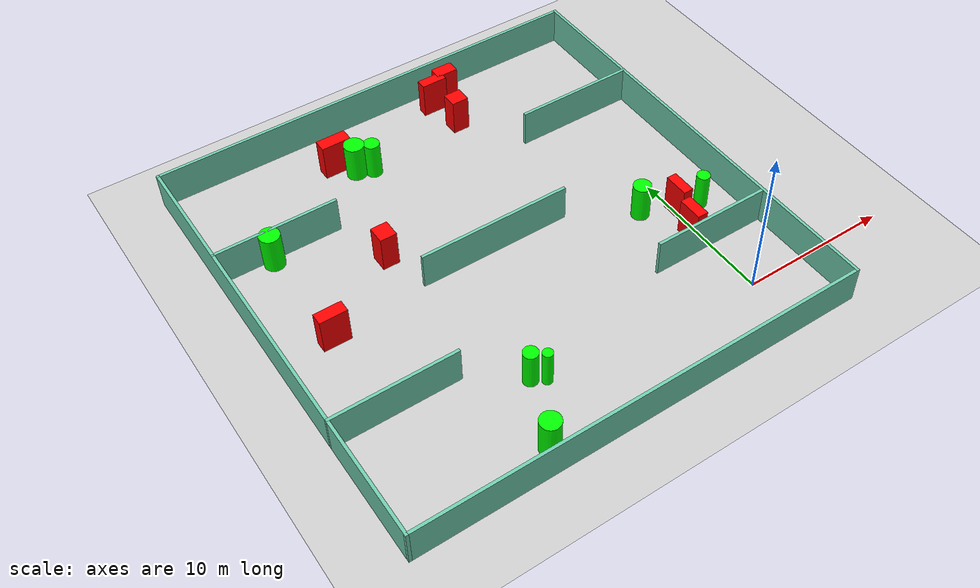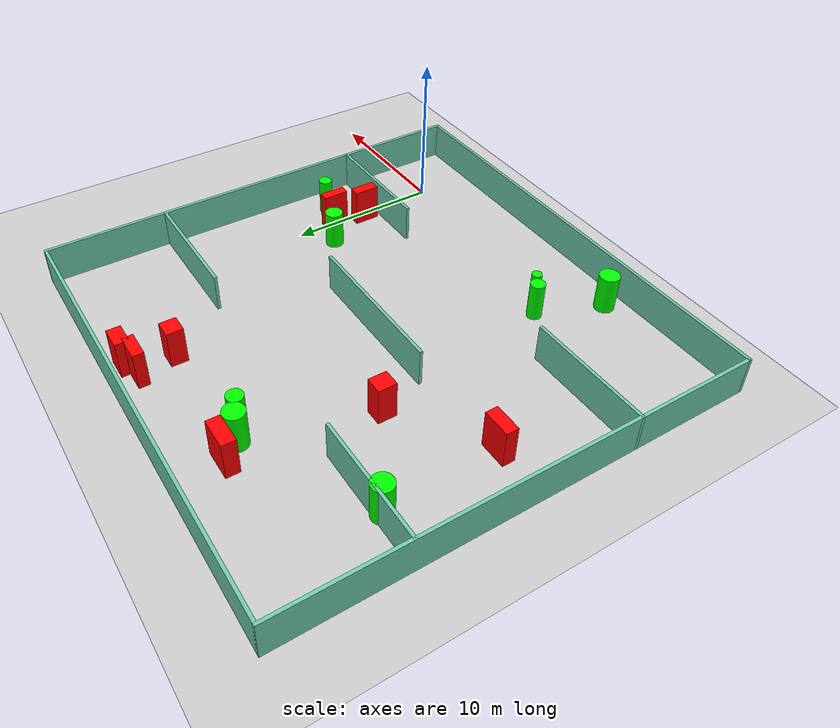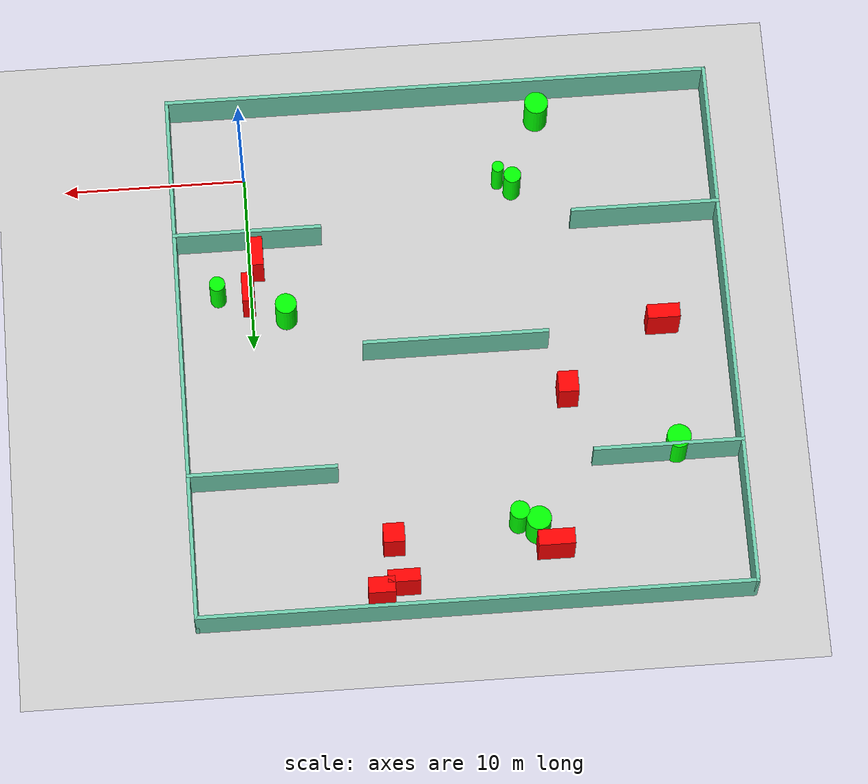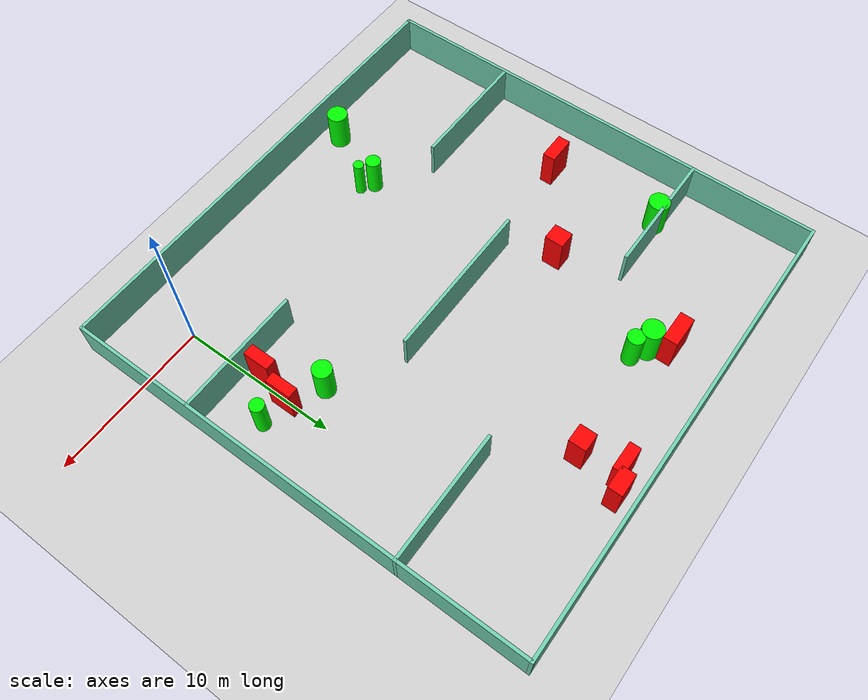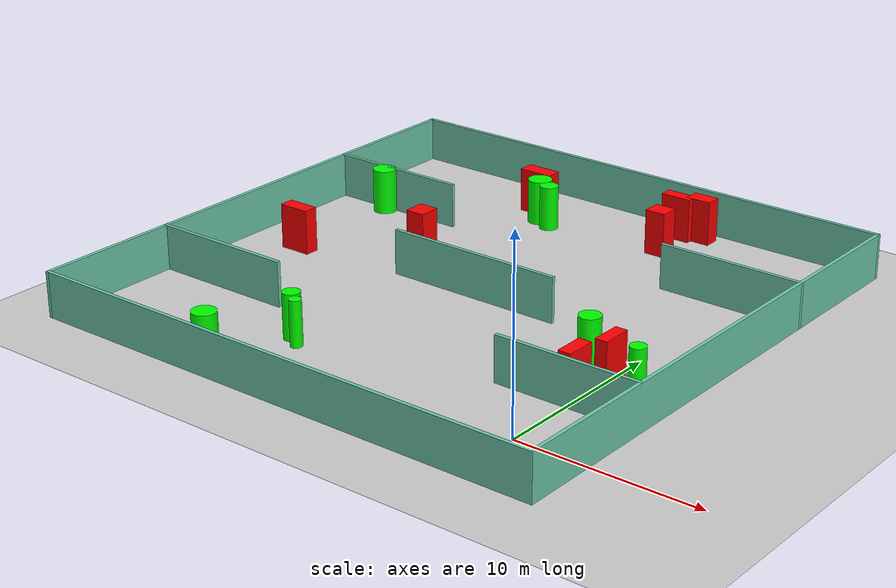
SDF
<sdf version="1.7">
 <world name="default">
  <light name="sun" type="directional">
   <pose>0 0 10 0 -0 0</pose>
   <diffuse>0.8 0.8 0.8 1</diffuse>
   <specular>0.2 0.2 0.2 1</specular>
   <attenuation>
    <range>1000</range>
    <constant>0.9</constant>
    <linear>0.01</linear>
    <quadratic>0.001</quadratic>
   </attenuation>
   <direction>-0.5 0.1 -0.9</direction>
   <spot><inner_angle>0</inner_angle><outer_angle>0</outer_angle><falloff>0</falloff></spot>
  </light>
  <model name="ground_plane">
   <static>1</static>
   <link name="link">
    <collision name="collision">
     <geometry><plane><normal>0 0 1</normal><size>100 100</size></plane></geometry>
     <surface>
      <contact><collide_bitmask>65535</collide_bitmask></contact>
      <friction><ode><mu>100</mu><mu2>50</mu2></ode></friction>
     </surface>
    </collision>
    <visual name="visual">
     <cast_shadows>0</cast_shadows>
     <geometry><plane><normal>0 0 1</normal><size>100 100</size></plane></geometry>
     <material>
      <script><uri>file://media/materials/scripts/gazebo.material</uri><name>Gazebo/Grey</name></script>
     </material>
    </visual>
   </link>
  </model>
  <gravity>0 0 -9.8</gravity>
  <magnetic_field>6e-06 2.3e-05 -4.2e-05</magnetic_field>
  <atmosphere type="adiabatic"/>
  <physics type="ode">
   <max_step_size>0.001</max_step_size>
   <real_time_factor>1</real_time_factor>
   <real_time_update_rate>1000</real_time_update_rate>
  </physics>
  <scene><ambient>0.4 0.4 0.4 1</ambient><background>0.7 0.7 0.7 1</background><shadows>1</shadows></scene>
  <spherical_coordinates>
   <surface_model>EARTH_WGS84</surface_model>
   <latitude_deg>0</latitude_deg>
   <longitude_deg>0</longitude_deg>
   <elevation>0</elevation>
   <heading_deg>0</heading_deg>
  </spherical_coordinates>
  <model name="my_base_walls">
   <link name="Wall_10">
    <collision name="Wall_10_Collision">
     <geometry><box><size>8.2 0.2 2.5</size></box></geometry>
     <pose>0 0 1.25 0 -0 0</pose>
    </collision>
    <visual name="Wall_10_Visual">
     <pose>0 0 1.25 0 -0 0</pose>
     <geometry><box><size>8.2 0.2 2.5</size></box></geometry>
     <material>
      <script><uri>file://media/materials/scripts/gazebo.material</uri><name>Gazebo/Grey</name></script>
      <ambient>0.435294 0.796078 0.67451 1</ambient>
     </material>
     <meta><layer>0</layer></meta>
    </visual>
    <pose>-11 -7 0 0 -0 0</pose>
   </link>
   <link name="Wall_12">
    <collision name="Wall_12_Collision">
     <geometry><box><size>8.2 0.2 2.5</size></box></geometry>
     <pose>0 0 1.25 0 -0 0</pose>
    </collision>
    <visual name="Wall_12_Visual">
     <pose>0 0 1.25 0 -0 0</pose>
     <geometry><box><size>8.2 0.2 2.5</size></box></geometry>
     <material>
      <script><uri>file://media/materials/scripts/gazebo.material</uri><name>Gazebo/Grey</name></script>
      <ambient>0.435294 0.796078 0.67451 1</ambient>
     </material>
     <meta><layer>0</layer></meta>
    </visual>
    <pose>-11 7 0 0 -0 0</pose>
   </link>
   <link name="Wall_14">
    <collision name="Wall_14_Collision">
     <geometry><box><size>8.2 0.2 2.5</size></box></geometry>
     <pose>0 0 1.25 0 -0 0</pose>
    </collision>
    <visual name="Wall_14_Visual">
     <pose>0 0 1.25 0 -0 0</pose>
     <geometry><box><size>8.2 0.2 2.5</size></box></geometry>
     <material>
      <script><uri>file://media/materials/scripts/gazebo.material</uri><name>Gazebo/Grey</name></script>
      <ambient>0.435294 0.796078 0.67451 1</ambient>
     </material>
     <meta><layer>0</layer></meta>
    </visual>
    <pose>11 7 0 0 -0 3.14159</pose>
   </link>
   <link name="Wall_16">
    <collision name="Wall_16_Collision">
     <geometry><box><size>10.2 0.2 2.5</size></box></geometry>
     <pose>0 0 1.25 0 -0 0</pose>
    </collision>
    <visual name="Wall_16_Visual">
     <pose>0 0 1.25 0 -0 0</pose>
     <geometry><box><size>10.2 0.2 2.5</size></box></geometry>
     <material>
      <script><uri>file://media/materials/scripts/gazebo.material</uri><name>Gazebo/Grey</name></script>
      <ambient>0.435294 0.796078 0.67451 1</ambient>
     </material>
     <meta><layer>0</layer></meta>
    </visual>
    <pose>0 0 0 0 -0 3.14159</pose>
   </link>
   <link name="Wall_2">
    <collision name="Wall_2_Collision">
     <geometry><box><size>30.2 0.2 2.5</size></box></geometry>
     <pose>0 0 1.25 0 -0 0</pose>
    </collision>
    <visual name="Wall_2_Visual">
     <pose>0 0 1.25 0 -0 0</pose>
     <geometry><box><size>30.2 0.2 2.5</size></box></geometry>
     <material>
      <script><uri>file://media/materials/scripts/gazebo.material</uri><name>Gazebo/Grey</name></script>
      <ambient>0.435294 0.796078 0.67451 1</ambient>
     </material>
     <meta><layer>0</layer></meta>
    </visual>
    <pose>0 -15 0 0 -0 3.14159</pose>
   </link>
   <link name="Wall_3">
    <collision name="Wall_3_Collision">
     <geometry><box><size>30.2 0.2 2.5</size></box></geometry>
     <pose>0 0 1.25 0 -0 0</pose>
    </collision>
    <visual name="Wall_3_Visual">
     <pose>0 0 1.25 0 -0 0</pose>
     <geometry><box><size>30.2 0.2 2.5</size></box></geometry>
     <material>
      <script><uri>file://media/materials/scripts/gazebo.material</uri><name>Gazebo/Grey</name></script>
      <ambient>0.435294 0.796078 0.67451 1</ambient>
     </material>
     <meta><layer>0</layer></meta>
    </visual>
    <pose>-15 0 0 0 -0 1.5708</pose>
   </link>
   <link name="Wall_4">
    <collision name="Wall_4_Collision">
     <geometry><box><size>30.2 0.2 2.5</size></box></geometry>
     <pose>0 0 1.25 0 -0 0</pose>
    </collision>
    <visual name="Wall_4_Visual">
     <pose>0 0 1.25 0 -0 0</pose>
     <geometry><box><size>30.2 0.2 2.5</size></box></geometry>
     <material>
      <script><uri>file://media/materials/scripts/gazebo.material</uri><name>Gazebo/Grey</name></script>
      <ambient>0.435294 0.796078 0.67451 1</ambient>
     </material>
     <meta><layer>0</layer></meta>
    </visual>
    <pose>0 15 0 0 -0 0</pose>
   </link>
   <link name="Wall_6">
    <collision name="Wall_6_Collision">
     <geometry><box><size>30.2 0.2 2.5</size></box></geometry>
     <pose>0 0 1.25 0 -0 0</pose>
    </collision>
    <visual name="Wall_6_Visual">
     <pose>0 0 1.25 0 -0 0</pose>
     <geometry><box><size>30.2 0.2 2.5</size></box></geometry>
     <material>
      <script><uri>file://media/materials/scripts/gazebo.material</uri><name>Gazebo/Grey</name></script>
      <ambient>0.435294 0.796078 0.67451 1</ambient>
     </material>
     <meta><layer>0</layer></meta>
    </visual>
    <pose>15 0 0 0 -0 1.5708</pose>
   </link>
   <link name="Wall_8">
    <collision name="Wall_8_Collision">
     <geometry><box><size>8.2 0.2 2.5</size></box></geometry>
     <pose>0 0 1.25 0 -0 0</pose>
    </collision>
    <visual name="Wall_8_Visual">
     <pose>0 0 1.25 0 -0 0</pose>
     <geometry><box><size>8.2 0.2 2.5</size></box></geometry>
     <material>
      <script><uri>file://media/materials/scripts/gazebo.material</uri><name>Gazebo/Grey</name></script>
      <ambient>0.435294 0.796078 0.67451 1</ambient>
     </material>
     <meta><layer>0</layer></meta>
    </visual>
    <pose>11 -7 0 0 -0 3.14159</pose>
   </link>
   <static>1</static>
   <pose>-11 11 0 0 -0 0</pose>
  </model>
  <model name="cylinder1">
   <static>1</static>
   <link name="link">
    <inertial>
     <mass>1</mass>
     <inertia><ixx>0.5</ixx><ixy>0</ixy><ixz>0</ixz><iyy>0.5</iyy><iyz>0</iyz><izz>1</izz></inertia>
    </inertial>
    <collision name="collision">
     <geometry><cylinder><radius>0.522646935510322</radius><length>2.5</length></cylinder></geometry>
    </collision>
    <visual name="visual">
     <geometry><cylinder><radius>0.522646935510322</radius><length>2.5</length></cylinder></geometry>
     <material>
      <ambient>0 1 0 1</ambient>
      <diffuse>0 1 0 1</diffuse>
      <specular>0.1 0.1 0.1 1</specular>
      <emissive>0 0 0 0</emissive>
     </material>
    </visual>
   </link>
   <pose>-13.66450637149244 21.190297914769182 1.25 0 0 0</pose>
  </model>
  <model name="cylinder2">
   <static>1</static>
   <link name="link">
    <inertial>
     <mass>1</mass>
     <inertia><ixx>0.5</ixx><ixy>0</ixy><ixz>0</ixz><iyy>0.5</iyy><iyz>0</iyz><izz>1</izz></inertia>
    </inertial>
    <collision name="collision">
     <geometry><cylinder><radius>0.6635322188213681</radius><length>2.5</length></cylinder></geometry>
    </collision>
    <visual name="visual">
     <geometry><cylinder><radius>0.6635322188213681</radius><length>2.5</length></cylinder></geometry>
     <material>
      <ambient>0 1 0 1</ambient>
      <diffuse>0 1 0 1</diffuse>
      <specular>0.1 0.1 0.1 1</specular>
      <emissive>0 0 0 0</emissive>
     </material>
    </visual>
   </link>
   <pose>-22.578991019832145 17.596132285217458 1.25 0 0 0</pose>
  </model>
  <model name="cylinder3">
   <static>1</static>
   <link name="link">
    <inertial>
     <mass>1</mass>
     <inertia><ixx>0.5</ixx><ixy>0</ixy><ixz>0</ixz><iyy>0.5</iyy><iyz>0</iyz><izz>1</izz></inertia>
    </inertial>
    <collision name="collision">
     <geometry><cylinder><radius>0.5900344184700428</radius><length>2.5</length></cylinder></geometry>
    </collision>
    <visual name="visual">
     <geometry><cylinder><radius>0.5900344184700428</radius><length>2.5</length></cylinder></geometry>
     <material>
      <ambient>0 1 0 1</ambient>
      <diffuse>0 1 0 1</diffuse>
      <specular>0.1 0.1 0.1 1</specular>
      <emissive>0 0 0 0</emissive>
     </material>
    </visual>
   </link>
   <pose>-1.8789080237145193 8.431120475000563 1.25 0 0 0</pose>
  </model>
  <model name="cylinder4">
   <static>1</static>
   <link name="link">
    <inertial>
     <mass>1</mass>
     <inertia><ixx>0.5</ixx><ixy>0</ixy><ixz>0</ixz><iyy>0.5</iyy><iyz>0</iyz><izz>1</izz></inertia>
    </inertial>
    <collision name="collision">
     <geometry><cylinder><radius>0.649946777444519</radius><length>2.5</length></cylinder></geometry>
    </collision>
    <visual name="visual">
     <geometry><cylinder><radius>0.649946777444519</radius><length>2.5</length></cylinder></geometry>
     <material>
      <ambient>0 1 0 1</ambient>
      <diffuse>0 1 0 1</diffuse>
      <specular>0.1 0.1 0.1 1</specular>
      <emissive>0 0 0 0</emissive>
     </material>
    </visual>
   </link>
   <pose>-16.52633276069087 -2.559918678465672 1.25 0 0 0</pose>
  </model>
  <model name="cylinder5">
   <static>1</static>
   <link name="link">
    <inertial>
     <mass>1</mass>
     <inertia><ixx>0.5</ixx><ixy>0</ixy><ixz>0</ixz><iyy>0.5</iyy><iyz>0</iyz><izz>1</izz></inertia>
    </inertial>
    <collision name="collision">
     <geometry><cylinder><radius>0.671321492258595</radius><length>2.5</length></cylinder></geometry>
    </collision>
    <visual name="visual">
     <geometry><cylinder><radius>0.671321492258595</radius><length>2.5</length></cylinder></geometry>
     <material>
      <ambient>0 1 0 1</ambient>
      <diffuse>0 1 0 1</diffuse>
      <specular>0.1 0.1 0.1 1</specular>
      <emissive>0 0 0 0</emissive>
     </material>
    </visual>
   </link>
   <pose>-14.653592517310004 21.707627200526485 1.25 0 0 0</pose>
  </model>
  <model name="cylinder6">
   <static>1</static>
   <link name="link">
    <inertial>
     <mass>1</mass>
     <inertia><ixx>0.5</ixx><ixy>0</ixy><ixz>0</ixz><iyy>0.5</iyy><iyz>0</iyz><izz>1</izz></inertia>
    </inertial>
    <collision name="collision">
     <geometry><cylinder><radius>0.4766110002046253</radius><length>2.5</length></cylinder></geometry>
    </collision>
    <visual name="visual">
     <geometry><cylinder><radius>0.4766110002046253</radius><length>2.5</length></cylinder></geometry>
     <material>
      <ambient>0 1 0 1</ambient>
      <diffuse>0 1 0 1</diffuse>
      <specular>0.1 0.1 0.1 1</specular>
      <emissive>0 0 0 0</emissive>
     </material>
    </visual>
   </link>
   <pose>-14.848101377037894 1.6780679564882828 1.25 0 0 0</pose>
  </model>
  <model name="cylinder7">
   <static>1</static>
   <link name="link">
    <inertial>
     <mass>1</mass>
     <inertia><ixx>0.5</ixx><ixy>0</ixy><ixz>0</ixz><iyy>0.5</iyy><iyz>0</iyz><izz>1</izz></inertia>
    </inertial>
    <collision name="collision">
     <geometry><cylinder><radius>0.43410605181823675</radius><length>2.5</length></cylinder></geometry>
    </collision>
    <visual name="visual">
     <geometry><cylinder><radius>0.43410605181823675</radius><length>2.5</length></cylinder></geometry>
     <material>
      <ambient>0 1 0 1</ambient>
      <diffuse>0 1 0 1</diffuse>
      <specular>0.1 0.1 0.1 1</specular>
      <emissive>0 0 0 0</emissive>
     </material>
    </visual>
   </link>
   <pose>1.7996560528616925 7.019389241900868 1.25 0 0 0</pose>
  </model>
  <model name="cylinder8">
   <static>1</static>
   <link name="link">
    <inertial>
     <mass>1</mass>
     <inertia><ixx>0.5</ixx><ixy>0</ixy><ixz>0</ixz><iyy>0.5</iyy><iyz>0</iyz><izz>1</izz></inertia>
    </inertial>
    <collision name="collision">
     <geometry><cylinder><radius>0.3291883300107773</radius><length>2.5</length></cylinder></geometry>
    </collision>
    <visual name="visual">
     <geometry><cylinder><radius>0.3291883300107773</radius><length>2.5</length></cylinder></geometry>
     <material>
      <ambient>0 1 0 1</ambient>
      <diffuse>0 1 0 1</diffuse>
      <specular>0.1 0.1 0.1 1</specular>
      <emissive>0 0 0 0</emissive>
     </material>
    </visual>
   </link>
   <pose>-14.092306916257016 1.1342415927337877 1.25 0 0 0</pose>
  </model>
  <model name="box1">
   <static>1</static>
   <link name="link">
    <inertial>
     <mass>1</mass>
     <inertia><ixx>0.083</ixx><ixy>0</ixy><ixz>0</ixz><iyy>0.083</iyy><iyz>0</iyz><izz>0.083</izz></inertia>
    </inertial>
    <collision name="collision">
     <geometry><box><size>1.4517692327515395 0.8882354009174782 2.5</size></box></geometry>
    </collision>
    <visual name="visual">
     <geometry><box><size>1.4517692327515395 0.8882354009174782 2.5</size></box></geometry>
     <material>
      <ambient>1 0 0 1</ambient>
      <diffuse>1 0 0 1</diffuse>
      <specular>0.1 0.1 0.1 1</specular>
      <emissive>0 0 0 0</emissive>
     </material>
    </visual>
    <sensor name="my_contact" type="contact">
     <contact><collision>box_collision</collision><topic>__default_topic__</topic></contact>
    </sensor>
   </link>
   <pose>-5.984614925928565 24.8445629349653 1.25 0 0 0</pose>
  </model>
  <model name="box2">
   <static>1</static>
   <link name="link">
    <inertial>
     <mass>1</mass>
     <inertia><ixx>0.083</ixx><ixy>0</ixy><ixz>0</ixz><iyy>0.083</iyy><iyz>0</iyz><izz>0.083</izz></inertia>
    </inertial>
    <collision name="collision">
     <geometry><box><size>1.1631812272206066 1.072308716630543 2.5</size></box></geometry>
    </collision>
    <visual name="visual">
     <geometry><box><size>1.1631812272206066 1.072308716630543 2.5</size></box></geometry>
     <material>
      <ambient>1 0 0 1</ambient>
      <diffuse>1 0 0 1</diffuse>
      <specular>0.1 0.1 0.1 1</specular>
      <emissive>0 0 0 0</emissive>
     </material>
    </visual>
    <sensor name="my_contact" type="contact">
     <contact><collision>box_collision</collision><topic>__default_topic__</topic></contact>
    </sensor>
   </link>
   <pose>-6.82577019586472 21.97901139827634 1.25 0 0 0</pose>
  </model>
  <model name="box3">
   <static>1</static>
   <link name="link">
    <inertial>
     <mass>1</mass>
     <inertia><ixx>0.083</ixx><ixy>0</ixy><ixz>0</ixz><iyy>0.083</iyy><iyz>0</iyz><izz>0.083</izz></inertia>
    </inertial>
    <collision name="collision">
     <geometry><box><size>1.1112074974269577 1.1998759487035868 2.5</size></box></geometry>
    </collision>
    <visual name="visual">
     <geometry><box><size>1.1112074974269577 1.1998759487035868 2.5</size></box></geometry>
     <material>
      <ambient>1 0 0 1</ambient>
      <diffuse>1 0 0 1</diffuse>
      <specular>0.1 0.1 0.1 1</specular>
      <emissive>0 0 0 0</emissive>
     </material>
    </visual>
    <sensor name="my_contact" type="contact">
     <contact><collision>box_collision</collision><topic>__default_topic__</topic></contact>
    </sensor>
   </link>
   <pose>-16.8839814671908 14.035126026418904 1.25 0 0 0</pose>
  </model>
  <model name="box4">
   <static>1</static>
   <link name="link">
    <inertial>
     <mass>1</mass>
     <inertia><ixx>0.083</ixx><ixy>0</ixy><ixz>0</ixz><iyy>0.083</iyy><iyz>0</iyz><izz>0.083</izz></inertia>
    </inertial>
    <collision name="collision">
     <geometry><box><size>0.6713411583866611 1.674975864792625 2.5</size></box></geometry>
    </collision>
    <visual name="visual">
     <geometry><box><size>0.6713411583866611 1.674975864792625 2.5</size></box></geometry>
     <material>
      <ambient>1 0 0 1</ambient>
      <diffuse>1 0 0 1</diffuse>
      <specular>0.1 0.1 0.1 1</specular>
      <emissive>0 0 0 0</emissive>
     </material>
    </visual>
    <sensor name="my_contact" type="contact">
     <contact><collision>box_collision</collision><topic>__default_topic__</topic></contact>
    </sensor>
   </link>
   <pose>0.1366900898912995 7.27779379712884 1.25 0 0 0</pose>
  </model>
  <model name="box5">
   <static>1</static>
   <link name="link">
    <inertial>
     <mass>1</mass>
     <inertia><ixx>0.083</ixx><ixy>0</ixy><ixz>0</ixz><iyy>0.083</iyy><iyz>0</iyz><izz>0.083</izz></inertia>
    </inertial>
    <collision name="collision">
     <geometry><box><size>1.7529609212603559 0.7060532969940426 2.5</size></box></geometry>
    </collision>
    <visual name="visual">
     <geometry><box><size>1.7529609212603559 0.7060532969940426 2.5</size></box></geometry>
     <material>
      <ambient>1 0 0 1</ambient>
      <diffuse>1 0 0 1</diffuse>
      <specular>0.1 0.1 0.1 1</specular>
      <emissive>0 0 0 0</emissive>
     </material>
    </visual>
    <sensor name="my_contact" type="contact">
     <contact><collision>box_collision</collision><topic>__default_topic__</topic></contact>
    </sensor>
   </link>
   <pose>-7.205039836747696 24.407632900022723 1.25 0 0 0</pose>
  </model>
  <model name="box6">
   <static>1</static>
   <link name="link">
    <inertial>
     <mass>1</mass>
     <inertia><ixx>0.083</ixx><ixy>0</ixy><ixz>0</ixz><iyy>0.083</iyy><iyz>0</iyz><izz>0.083</izz></inertia>
    </inertial>
    <collision name="collision">
     <geometry><box><size>1.9858458117750555 0.8804992868730055 2.5</size></box></geometry>
    </collision>
    <visual name="visual">
     <geometry><box><size>1.9858458117750555 0.8804992868730055 2.5</size></box></geometry>
     <material>
      <ambient>1 0 0 1</ambient>
      <diffuse>1 0 0 1</diffuse>
      <specular>0.1 0.1 0.1 1</specular>
      <emissive>0 0 0 0</emissive>
     </material>
    </visual>
    <sensor name="my_contact" type="contact">
     <contact><collision>box_collision</collision><topic>__default_topic__</topic></contact>
    </sensor>
   </link>
   <pose>-15.510228570304474 22.826761353161675 1.25 0 0 0</pose>
  </model>
  <model name="box7">
   <static>1</static>
   <link name="link">
    <inertial>
     <mass>1</mass>
     <inertia><ixx>0.083</ixx><ixy>0</ixy><ixz>0</ixz><iyy>0.083</iyy><iyz>0</iyz><izz>0.083</izz></inertia>
    </inertial>
    <collision name="collision">
     <geometry><box><size>0.7259637744639947 1.6636506353319571 2.5</size></box></geometry>
    </collision>
    <visual name="visual">
     <geometry><box><size>0.7259637744639947 1.6636506353319571 2.5</size></box></geometry>
     <material>
      <ambient>1 0 0 1</ambient>
      <diffuse>1 0 0 1</diffuse>
      <specular>0.1 0.1 0.1 1</specular>
      <emissive>0 0 0 0</emissive>
     </material>
    </visual>
    <sensor name="my_contact" type="contact">
     <contact><collision>box_collision</collision><topic>__default_topic__</topic></contact>
    </sensor>
   </link>
   <pose>-0.44957021315100576 5.202393203872253 1.25 0 0 0</pose>
  </model>
  <model name="box8">
   <static>1</static>
   <link name="link">
    <inertial>
     <mass>1</mass>
     <inertia><ixx>0.083</ixx><ixy>0</ixy><ixz>0</ixz><iyy>0.083</iyy><iyz>0</iyz><izz>0.083</izz></inertia>
    </inertial>
    <collision name="collision">
     <geometry><box><size>1.7958942558075162 0.8030849704157239 2.5</size></box></geometry>
    </collision>
    <visual name="visual">
     <geometry><box><size>1.7958942558075162 0.8030849704157239 2.5</size></box></geometry>
     <material>
      <ambient>1 0 0 1</ambient>
      <diffuse>1 0 0 1</diffuse>
      <specular>0.1 0.1 0.1 1</specular>
      <emissive>0 0 0 0</emissive>
     </material>
    </visual>
    <sensor name="my_contact" type="contact">
     <contact><collision>box_collision</collision><topic>__default_topic__</topic></contact>
    </sensor>
   </link>
   <pose>-22.43036383761679 10.302699351683259 1.25 0 0 0</pose>
  </model>
 </world>
</sdf>
